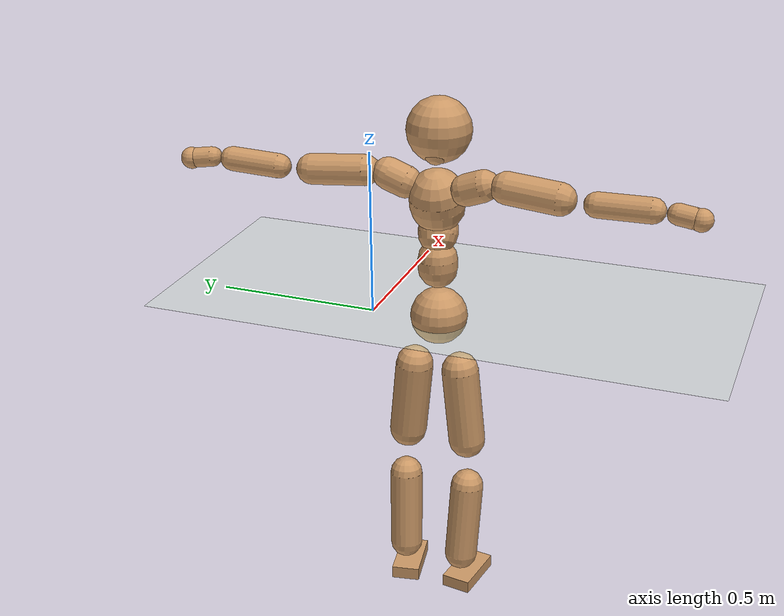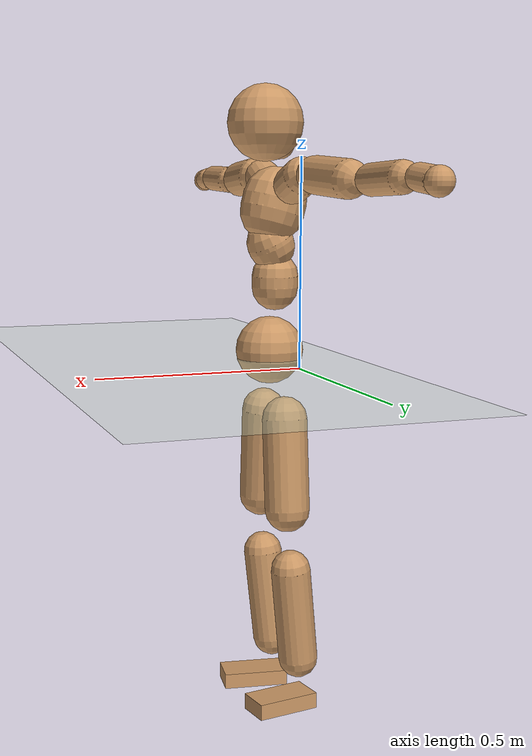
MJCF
<mujoco model="humanoid">
  <compiler coordinate="local"/>
  <default>
    <joint damping="0.0" armature="0.01" stiffness="0.0" limited="true"/>
    <geom conaffinity="1" condim="3" contype="7" margin="0.001" rgba="0.8 0.6 .4 1"/>
  </default>
  <asset>
    <texture type="skybox" builtin="gradient" rgb1=".4 .5 .6" rgb2="0 0 0" width="100" height="100"/>
    <texture builtin="flat" height="1278" mark="cross" markrgb="1 1 1" name="texgeom" random="0.01" rgb1="0.8 0.6 0.4" rgb2="0.8 0.6 0.4" type="cube" width="127"/>
    <texture builtin="checker" height="100" name="texplane" rgb1="0 0 0" rgb2="0.8 0.8 0.8" type="2d" width="100"/>
    <material name="MatPlane" reflectance="0.5" shininess="1" specular="1" texrepeat="60 60" texture="texplane"/>
    <material name="geom" texture="texgeom" texuniform="true"/>
  </asset>
  <worldbody>
    <light cutoff="100" diffuse="1 1 1" dir="-0 0 -1.3" directional="true" exponent="1" pos="0 0 1.3" specular=".1 .1 .1"/>
    <geom conaffinity="1" condim="3" name="floor" pos="0 0 0" rgba="0.8 0.9 0.8 1" size="100 100 .2" type="plane" material="MatPlane"/>
    <body name="Pelvis" pos="-0.0018 -0.2132 0.0191">
      <freejoint name="Pelvis"/>
      <geom type="sphere" contype="1" conaffinity="1" density="500" size="0.0861" pos="0.0000 0.0000 0.0000" name="Pelvis"/>
      <body name="L_Hip" pos="-0.0143 0.066 -0.0904">
        <joint name="L_Hip_x" type="hinge" pos="0 0 0" axis="1 0 0" stiffness="800" damping="80" armature="0.02" range="-180.0000 180.0000"/>
        <joint name="L_Hip_y" type="hinge" pos="0 0 0" axis="0 1 0" stiffness="800" damping="80" armature="0.02" range="-180.0000 180.0000"/>
        <joint name="L_Hip_z" type="hinge" pos="0 0 0" axis="0 0 1" stiffness="800" damping="80" armature="0.02" range="-180.0000 180.0000"/>
        <geom type="capsule" contype="1" conaffinity="1" density="500" fromto="-0.0001 0.0073 -0.0774 -0.0003 0.0294 -0.3095" size="0.0571" name="L_Hip"/>
        <body name="L_Knee" pos="-0.0004 0.0367 -0.3869">
          <joint name="L_Knee_x" type="hinge" pos="0 0 0" axis="1 0 0" stiffness="800" damping="80" armature="0.02" range="-180.0000 180.0000"/>
          <joint name="L_Knee_y" type="hinge" pos="0 0 0" axis="0 1 0" stiffness="800" damping="80" armature="0.02" range="-180.0000 180.0000"/>
          <joint name="L_Knee_z" type="hinge" pos="0 0 0" axis="0 0 1" stiffness="800" damping="80" armature="0.02" range="-180.0000 180.0000"/>
          <geom type="capsule" contype="1" conaffinity="1" density="500" fromto="-0.0085 -0.0026 -0.0817 -0.0340 -0.0106 -0.3268" size="0.0506" name="L_Knee"/>
          <body name="L_Ankle" pos="-0.0425 -0.0132 -0.4085">
            <joint name="L_Ankle_x" type="hinge" pos="0 0 0" axis="1 0 0" stiffness="800" damping="80" armature="0.02" range="-180.0000 180.0000"/>
            <joint name="L_Ankle_y" type="hinge" pos="0 0 0" axis="0 1 0" stiffness="800" damping="80" armature="0.02" range="-180.0000 180.0000"/>
            <joint name="L_Ankle_z" type="hinge" pos="0 0 0" axis="0 0 1" stiffness="800" damping="80" armature="0.02" range="-180.0000 180.0000"/>
            <geom type="box" contype="1" conaffinity="1" density="500" pos="0.0591 0.0099 -0.0284" size="0.083 0.0434 0.0205" quat="0.9966 0.0000 0.0000 0.0827" name="L_Ankle"/>
            <body name="L_Toe" pos="0.1181 0.0197 -0.0567">
              <joint name="L_Toe_x" type="hinge" pos="0 0 0" axis="1 0 0" stiffness="500" damping="50" armature="0.02" range="-180.0000 180.0000"/>
              <joint name="L_Toe_y" type="hinge" pos="0 0 0" axis="0 1 0" stiffness="500" damping="50" armature="0.02" range="-180.0000 180.0000"/>
              <joint name="L_Toe_z" type="hinge" pos="0 0 0" axis="0 0 1" stiffness="500" damping="50" armature="0.02" range="-180.0000 180.0000"/>
              <geom type="box" contype="1" conaffinity="1" density="500" pos="0.0000 0.0000 0.0277" size="0.0009 0.0022 0.001" quat="0.9960 0.0000 0.0000 0.0894" name="L_Toe"/>
            </body>
          </body>
        </body>
      </body>
      <body name="R_Hip" pos="-0.0101 -0.0634 -0.0893">
        <joint name="R_Hip_x" type="hinge" pos="0 0 0" axis="1 0 0" stiffness="800" damping="80" armature="0.02" range="-180.0000 180.0000"/>
        <joint name="R_Hip_y" type="hinge" pos="0 0 0" axis="0 1 0" stiffness="800" damping="80" armature="0.02" range="-180.0000 180.0000"/>
        <joint name="R_Hip_z" type="hinge" pos="0 0 0" axis="0 0 1" stiffness="800" damping="80" armature="0.02" range="-180.0000 180.0000"/>
        <geom type="capsule" contype="1" conaffinity="1" density="500" fromto="-0.0007 -0.0085 -0.0790 -0.0029 -0.0339 -0.3159" size="0.0563" name="R_Hip"/>
        <body name="R_Knee" pos="-0.0036 -0.0424 -0.3948">
          <joint name="R_Knee_x" type="hinge" pos="0 0 0" axis="1 0 0" stiffness="800" damping="80" armature="0.02" range="-180.0000 180.0000"/>
          <joint name="R_Knee_y" type="hinge" pos="0 0 0" axis="0 1 0" stiffness="800" damping="80" armature="0.02" range="-180.0000 180.0000"/>
          <joint name="R_Knee_z" type="hinge" pos="0 0 0" axis="0 0 1" stiffness="800" damping="80" armature="0.02" range="-180.0000 180.0000"/>
          <geom type="capsule" contype="1" conaffinity="1" density="500" fromto="-0.0079 0.0033 -0.0815 -0.0316 0.0130 -0.3259" size="0.051" name="R_Knee"/>
          <body name="R_Ankle" pos="-0.0395 0.0163 -0.4074">
            <joint name="R_Ankle_x" type="hinge" pos="0 0 0" axis="1 0 0" stiffness="800" damping="80" armature="0.02" range="-180.0000 180.0000"/>
            <joint name="R_Ankle_y" type="hinge" pos="0 0 0" axis="0 1 0" stiffness="800" damping="80" armature="0.02" range="-180.0000 180.0000"/>
            <joint name="R_Ankle_z" type="hinge" pos="0 0 0" axis="0 0 1" stiffness="800" damping="80" armature="0.02" range="-180.0000 180.0000"/>
            <geom type="box" contype="1" conaffinity="1" density="500" pos="0.0606 -0.0091 -0.0243" size="0.0849 0.0455 0.0198" quat="0.9972 0.0000 0.0000 -0.0745" name="R_Ankle"/>
            <body name="R_Toe" pos="0.1212 -0.0182 -0.0485">
              <joint name="R_Toe_x" type="hinge" pos="0 0 0" axis="1 0 0" stiffness="500" damping="50" armature="0.02" range="-180.0000 180.0000"/>
              <joint name="R_Toe_y" type="hinge" pos="0 0 0" axis="0 1 0" stiffness="500" damping="50" armature="0.02" range="-180.0000 180.0000"/>
              <joint name="R_Toe_z" type="hinge" pos="0 0 0" axis="0 0 1" stiffness="500" damping="50" armature="0.02" range="-180.0000 180.0000"/>
              <geom type="box" contype="1" conaffinity="1" density="500" pos="0.0000 0.0000 0.0266" size="0.0008 0.0022 0.0011" quat="0.9979 0.0000 0.0000 -0.0654" name="R_Toe"/>
            </body>
          </body>
        </body>
      </body>
      <body name="Torso" pos="-0.0152 -0.003 0.1041">
        <joint name="Torso_x" type="hinge" pos="0 0 0" axis="1 0 0" stiffness="1000" damping="100" armature="0.02" range="-180.0000 180.0000"/>
        <joint name="Torso_y" type="hinge" pos="0 0 0" axis="0 1 0" stiffness="1000" damping="100" armature="0.02" range="-180.0000 180.0000"/>
        <joint name="Torso_z" type="hinge" pos="0 0 0" axis="0 0 1" stiffness="1000" damping="100" armature="0.02" range="-180.0000 180.0000"/>
        <geom type="capsule" contype="1" conaffinity="1" density="500" fromto="0.0008 0.0026 0.0835 0.0005 0.0018 0.0557" size="0.058962" name="Torso"/>
        <body name="Spine" pos="0.0013 0.0044 0.1391">
          <joint name="Spine_x" type="hinge" pos="0 0 0" axis="1 0 0" stiffness="1000" damping="100" armature="0.02" range="-180.0000 180.0000"/>
          <joint name="Spine_y" type="hinge" pos="0 0 0" axis="0 1 0" stiffness="1000" damping="100" armature="0.02" range="-180.0000 180.0000"/>
          <joint name="Spine_z" type="hinge" pos="0 0 0" axis="0 0 1" stiffness="1000" damping="100" armature="0.02" range="-180.0000 180.0000"/>
          <geom type="capsule" contype="1" conaffinity="1" density="500" fromto="0.0149 0.0014 0.0299 0.0100 0.0010 0.0199" size="0.059427" name="Spine"/>
          <body name="Chest" pos="0.0249 0.0024 0.0498">
            <joint name="Chest_x" type="hinge" pos="0 0 0" axis="1 0 0" stiffness="1000" damping="100" armature="0.02" range="-180.0000 180.0000"/>
            <joint name="Chest_y" type="hinge" pos="0 0 0" axis="0 1 0" stiffness="1000" damping="100" armature="0.02" range="-180.0000 180.0000"/>
            <joint name="Chest_z" type="hinge" pos="0 0 0" axis="0 0 1" stiffness="1000" damping="100" armature="0.02" range="-180.0000 180.0000"/>
            <geom type="capsule" contype="1" conaffinity="1" density="500" fromto="-0.0234 -0.0010 0.0876 -0.0156 -0.0006 0.0584" size="0.081282" name="Chest"/>
            <body name="Neck" pos="-0.0457 -0.0031 0.2082">
              <joint name="Neck_x" type="hinge" pos="0 0 0" axis="1 0 0" stiffness="500" damping="50" armature="0.02" range="-180.0000 180.0000"/>
              <joint name="Neck_y" type="hinge" pos="0 0 0" axis="0 1 0" stiffness="500" damping="50" armature="0.02" range="-180.0000 180.0000"/>
              <joint name="Neck_z" type="hinge" pos="0 0 0" axis="0 0 1" stiffness="500" damping="50" armature="0.02" range="-180.0000 180.0000"/>
              <geom type="capsule" contype="1" conaffinity="1" density="500" fromto="0.0099 0.0011 0.0131 0.0397 0.0044 0.0524" size="0.036828" name="Neck"/>
              <body name="Head" pos="0.0497 0.0055 0.0656">
                <joint name="Head_x" type="hinge" pos="0 0 0" axis="1 0 0" stiffness="500" damping="50" armature="0.02" range="-180.0000 180.0000"/>
                <joint name="Head_y" type="hinge" pos="0 0 0" axis="0 1 0" stiffness="500" damping="50" armature="0.02" range="-180.0000 180.0000"/>
                <joint name="Head_z" type="hinge" pos="0 0 0" axis="0 0 1" stiffness="500" damping="50" armature="0.02" range="-180.0000 180.0000"/>
                <geom type="sphere" contype="1" conaffinity="1" density="500" size="0.0950" pos="0.0000 0.0000 0.0000" name="Head"/>
              </body>
            </body>
            <body name="L_Thorax" pos="-0.0334 0.0734 0.1161">
              <joint name="L_Thorax_x" type="hinge" pos="0 0 0" axis="1 0 0" stiffness="500" damping="50" armature="0.02" range="-180.0000 180.0000"/>
              <joint name="L_Thorax_y" type="hinge" pos="0 0 0" axis="0 1 0" stiffness="500" damping="50" armature="0.02" range="-180.0000 180.0000"/>
              <joint name="L_Thorax_z" type="hinge" pos="0 0 0" axis="0 0 1" stiffness="500" damping="50" armature="0.02" range="-180.0000 180.0000"/>
              <geom type="capsule" contype="1" conaffinity="1" density="500" fromto="-0.0009 0.0169 0.0066 -0.0036 0.0676 0.0265" size="0.0474" name="L_Thorax"/>
              <body name="L_Shoulder" pos="-0.0045 0.0845 0.0331">
                <joint name="L_Shoulder_x" type="hinge" pos="0 0 0" axis="1 0 0" stiffness="500" damping="50" armature="0.02" range="-720.0000 720.0000"/>
                <joint name="L_Shoulder_y" type="hinge" pos="0 0 0" axis="0 1 0" stiffness="500" damping="50" armature="0.02" range="-720.0000 720.0000"/>
                <joint name="L_Shoulder_z" type="hinge" pos="0 0 0" axis="0 0 1" stiffness="500" damping="50" armature="0.02" range="-720.0000 720.0000"/>
                <geom type="capsule" contype="1" conaffinity="1" density="500" fromto="-0.0053 0.0529 -0.0032 -0.0210 0.2117 -0.0128" size="0.0454" name="L_Shoulder"/>
                <body name="L_Elbow" pos="-0.0263 0.2646 -0.0159">
                  <joint name="L_Elbow_x" type="hinge" pos="0 0 0" axis="1 0 0" stiffness="500" damping="50" armature="0.02" range="-720.0000 720.0000"/>
                  <joint name="L_Elbow_y" type="hinge" pos="0 0 0" axis="0 1 0" stiffness="500" damping="50" armature="0.02" range="-720.0000 720.0000"/>
                  <joint name="L_Elbow_z" type="hinge" pos="0 0 0" axis="0 0 1" stiffness="500" damping="50" armature="0.02" range="-720.0000 720.0000"/>
                  <geom type="capsule" contype="1" conaffinity="1" density="500" fromto="-0.0002 0.0499 0.0019 -0.0009 0.1994 0.0075" size="0.036" name="L_Elbow"/>
                  <body name="L_Wrist" pos="-0.0011 0.2493 0.0094">
                    <joint name="L_Wrist_x" type="hinge" pos="0 0 0" axis="1 0 0" stiffness="300" damping="30" armature="0.02" range="-180.0000 180.0000"/>
                    <joint name="L_Wrist_y" type="hinge" pos="0 0 0" axis="0 1 0" stiffness="300" damping="30" armature="0.02" range="-180.0000 180.0000"/>
                    <joint name="L_Wrist_z" type="hinge" pos="0 0 0" axis="0 0 1" stiffness="300" damping="30" armature="0.02" range="-180.0000 180.0000"/>
                    <geom type="capsule" contype="1" conaffinity="1" density="500" fromto="-0.0027 0.0159 -0.0020 -0.0107 0.0635 -0.0079" size="0.0295" name="L_Wrist"/>
                    <body name="L_Hand" pos="-0.0133 0.0793 -0.0099">
                      <joint name="L_Hand_x" type="hinge" pos="0 0 0" axis="1 0 0" stiffness="300" damping="30" armature="0.02" range="-180.0000 180.0000"/>
                      <joint name="L_Hand_y" type="hinge" pos="0 0 0" axis="0 1 0" stiffness="300" damping="30" armature="0.02" range="-180.0000 180.0000"/>
                      <joint name="L_Hand_z" type="hinge" pos="0 0 0" axis="0 0 1" stiffness="300" damping="30" armature="0.02" range="-180.0000 180.0000"/>
                      <geom type="sphere" contype="1" conaffinity="1" density="500" size="0.0319" pos="0.0000 0.0000 0.0000" name="L_Hand"/>
                    </body>
                  </body>
                </body>
              </body>
            </body>
            <body name="R_Thorax" pos="-0.0377 -0.0751 0.1136">
              <joint name="R_Thorax_x" type="hinge" pos="0 0 0" axis="1 0 0" stiffness="500" damping="50" armature="0.02" range="-180.0000 180.0000"/>
              <joint name="R_Thorax_y" type="hinge" pos="0 0 0" axis="0 1 0" stiffness="500" damping="50" armature="0.02" range="-180.0000 180.0000"/>
              <joint name="R_Thorax_z" type="hinge" pos="0 0 0" axis="0 0 1" stiffness="500" damping="50" armature="0.02" range="-180.0000 180.0000"/>
              <geom type="capsule" contype="1" conaffinity="1" density="500" fromto="-0.0015 -0.0177 0.0069 -0.0061 -0.0707 0.0276" size="0.0462" name="R_Thorax"/>
              <body name="R_Shoulder" pos="-0.0077 -0.0884 0.0345">
                <joint name="R_Shoulder_x" type="hinge" pos="0 0 0" axis="1 0 0" stiffness="500" damping="50" armature="0.02" range="-720.0000 720.0000"/>
                <joint name="R_Shoulder_y" type="hinge" pos="0 0 0" axis="0 1 0" stiffness="500" damping="50" armature="0.02" range="-720.0000 720.0000"/>
                <joint name="R_Shoulder_z" type="hinge" pos="0 0 0" axis="0 0 1" stiffness="500" damping="50" armature="0.02" range="-720.0000 720.0000"/>
                <geom type="capsule" contype="1" conaffinity="1" density="500" fromto="-0.0034 -0.0515 -0.0032 -0.0138 -0.2059 -0.0127" size="0.047" name="R_Shoulder"/>
                <body name="R_Elbow" pos="-0.0172 -0.2574 -0.0159">
                  <joint name="R_Elbow_x" type="hinge" pos="0 0 0" axis="1 0 0" stiffness="500" damping="50" armature="0.02" range="-720.0000 720.0000"/>
                  <joint name="R_Elbow_y" type="hinge" pos="0 0 0" axis="0 1 0" stiffness="500" damping="50" armature="0.02" range="-720.0000 720.0000"/>
                  <joint name="R_Elbow_z" type="hinge" pos="0 0 0" axis="0 0 1" stiffness="500" damping="50" armature="0.02" range="-720.0000 720.0000"/>
                  <geom type="capsule" contype="1" conaffinity="1" density="500" fromto="-0.0013 -0.0514 0.0015 -0.0051 -0.2054 0.0058" size="0.0361" name="R_Elbow"/>
                  <body name="R_Wrist" pos="-0.0063 -0.2568 0.0073">
                    <joint name="R_Wrist_x" type="hinge" pos="0 0 0" axis="1 0 0" stiffness="300" damping="30" armature="0.02" range="-180.0000 180.0000"/>
                    <joint name="R_Wrist_y" type="hinge" pos="0 0 0" axis="0 1 0" stiffness="300" damping="30" armature="0.02" range="-180.0000 180.0000"/>
                    <joint name="R_Wrist_z" type="hinge" pos="0 0 0" axis="0 0 1" stiffness="300" damping="30" armature="0.02" range="-180.0000 180.0000"/>
                    <geom type="capsule" contype="1" conaffinity="1" density="500" fromto="-0.0021 -0.0160 -0.0014 -0.0082 -0.0641 -0.0058" size="0.0301" name="R_Wrist"/>
                    <body name="R_Hand" pos="-0.0103 -0.0801 -0.0072">
                      <joint name="R_Hand_x" type="hinge" pos="0 0 0" axis="1 0 0" stiffness="300" damping="30" armature="0.02" range="-180.0000 180.0000"/>
                      <joint name="R_Hand_y" type="hinge" pos="0 0 0" axis="0 1 0" stiffness="300" damping="30" armature="0.02" range="-180.0000 180.0000"/>
                      <joint name="R_Hand_z" type="hinge" pos="0 0 0" axis="0 0 1" stiffness="300" damping="30" armature="0.02" range="-180.0000 180.0000"/>
                      <geom type="sphere" contype="1" conaffinity="1" density="500" size="0.0320" pos="0.0000 0.0000 0.0000" name="R_Hand"/>
                    </body>
                  </body>
                </body>
              </body>
            </body>
          </body>
        </body>
      </body>
    </body>
  </worldbody>
  <actuator>
    <motor name="L_Hip_x" joint="L_Hip_x" gear="500"/>
    <motor name="L_Hip_y" joint="L_Hip_y" gear="500"/>
    <motor name="L_Hip_z" joint="L_Hip_z" gear="500"/>
    <motor name="L_Knee_x" joint="L_Knee_x" gear="500"/>
    <motor name="L_Knee_y" joint="L_Knee_y" gear="500"/>
    <motor name="L_Knee_z" joint="L_Knee_z" gear="500"/>
    <motor name="L_Ankle_x" joint="L_Ankle_x" gear="500"/>
    <motor name="L_Ankle_y" joint="L_Ankle_y" gear="500"/>
    <motor name="L_Ankle_z" joint="L_Ankle_z" gear="500"/>
    <motor name="L_Toe_x" joint="L_Toe_x" gear="500"/>
    <motor name="L_Toe_y" joint="L_Toe_y" gear="500"/>
    <motor name="L_Toe_z" joint="L_Toe_z" gear="500"/>
    <motor name="R_Hip_x" joint="R_Hip_x" gear="500"/>
    <motor name="R_Hip_y" joint="R_Hip_y" gear="500"/>
    <motor name="R_Hip_z" joint="R_Hip_z" gear="500"/>
    <motor name="R_Knee_x" joint="R_Knee_x" gear="500"/>
    <motor name="R_Knee_y" joint="R_Knee_y" gear="500"/>
    <motor name="R_Knee_z" joint="R_Knee_z" gear="500"/>
    <motor name="R_Ankle_x" joint="R_Ankle_x" gear="500"/>
    <motor name="R_Ankle_y" joint="R_Ankle_y" gear="500"/>
    <motor name="R_Ankle_z" joint="R_Ankle_z" gear="500"/>
    <motor name="R_Toe_x" joint="R_Toe_x" gear="500"/>
    <motor name="R_Toe_y" joint="R_Toe_y" gear="500"/>
    <motor name="R_Toe_z" joint="R_Toe_z" gear="500"/>
    <motor name="Torso_x" joint="Torso_x" gear="500"/>
    <motor name="Torso_y" joint="Torso_y" gear="500"/>
    <motor name="Torso_z" joint="Torso_z" gear="500"/>
    <motor name="Spine_x" joint="Spine_x" gear="500"/>
    <motor name="Spine_y" joint="Spine_y" gear="500"/>
    <motor name="Spine_z" joint="Spine_z" gear="500"/>
    <motor name="Chest_x" joint="Chest_x" gear="500"/>
    <motor name="Chest_y" joint="Chest_y" gear="500"/>
    <motor name="Chest_z" joint="Chest_z" gear="500"/>
    <motor name="Neck_x" joint="Neck_x" gear="500"/>
    <motor name="Neck_y" joint="Neck_y" gear="500"/>
    <motor name="Neck_z" joint="Neck_z" gear="500"/>
    <motor name="Head_x" joint="Head_x" gear="500"/>
    <motor name="Head_y" joint="Head_y" gear="500"/>
    <motor name="Head_z" joint="Head_z" gear="500"/>
    <motor name="L_Thorax_x" joint="L_Thorax_x" gear="500"/>
    <motor name="L_Thorax_y" joint="L_Thorax_y" gear="500"/>
    <motor name="L_Thorax_z" joint="L_Thorax_z" gear="500"/>
    <motor name="L_Shoulder_x" joint="L_Shoulder_x" gear="500"/>
    <motor name="L_Shoulder_y" joint="L_Shoulder_y" gear="500"/>
    <motor name="L_Shoulder_z" joint="L_Shoulder_z" gear="500"/>
    <motor name="L_Elbow_x" joint="L_Elbow_x" gear="500"/>
    <motor name="L_Elbow_y" joint="L_Elbow_y" gear="500"/>
    <motor name="L_Elbow_z" joint="L_Elbow_z" gear="500"/>
    <motor name="L_Wrist_x" joint="L_Wrist_x" gear="500"/>
    <motor name="L_Wrist_y" joint="L_Wrist_y" gear="500"/>
    <motor name="L_Wrist_z" joint="L_Wrist_z" gear="500"/>
    <motor name="L_Hand_x" joint="L_Hand_x" gear="500"/>
    <motor name="L_Hand_y" joint="L_Hand_y" gear="500"/>
    <motor name="L_Hand_z" joint="L_Hand_z" gear="500"/>
    <motor name="R_Thorax_x" joint="R_Thorax_x" gear="500"/>
    <motor name="R_Thorax_y" joint="R_Thorax_y" gear="500"/>
    <motor name="R_Thorax_z" joint="R_Thorax_z" gear="500"/>
    <motor name="R_Shoulder_x" joint="R_Shoulder_x" gear="500"/>
    <motor name="R_Shoulder_y" joint="R_Shoulder_y" gear="500"/>
    <motor name="R_Shoulder_z" joint="R_Shoulder_z" gear="500"/>
    <motor name="R_Elbow_x" joint="R_Elbow_x" gear="500"/>
    <motor name="R_Elbow_y" joint="R_Elbow_y" gear="500"/>
    <motor name="R_Elbow_z" joint="R_Elbow_z" gear="500"/>
    <motor name="R_Wrist_x" joint="R_Wrist_x" gear="500"/>
    <motor name="R_Wrist_y" joint="R_Wrist_y" gear="500"/>
    <motor name="R_Wrist_z" joint="R_Wrist_z" gear="500"/>
    <motor name="R_Hand_x" joint="R_Hand_x" gear="500"/>
    <motor name="R_Hand_y" joint="R_Hand_y" gear="500"/>
    <motor name="R_Hand_z" joint="R_Hand_z" gear="500"/>
  </actuator>
  <contact>
    <exclude body1="Torso" body2="Chest"/>
    <exclude body1="Head" body2="Chest"/>
    <exclude body1="R_Knee" body2="R_Toe"/>
    <exclude body1="R_Knee" body2="L_Ankle"/>
    <exclude body1="R_Knee" body2="L_Toe"/>
    <exclude body1="L_Knee" body2="L_Toe"/>
    <exclude body1="L_Knee" body2="R_Ankle"/>
    <exclude body1="L_Knee" body2="R_Toe"/>
    <exclude body1="L_Shoulder" body2="Chest"/>
    <exclude body1="R_Shoulder" body2="Chest"/>
  </contact>
  <sensor/>
  <size njmax="700" nconmax="700"/>
</mujoco>
